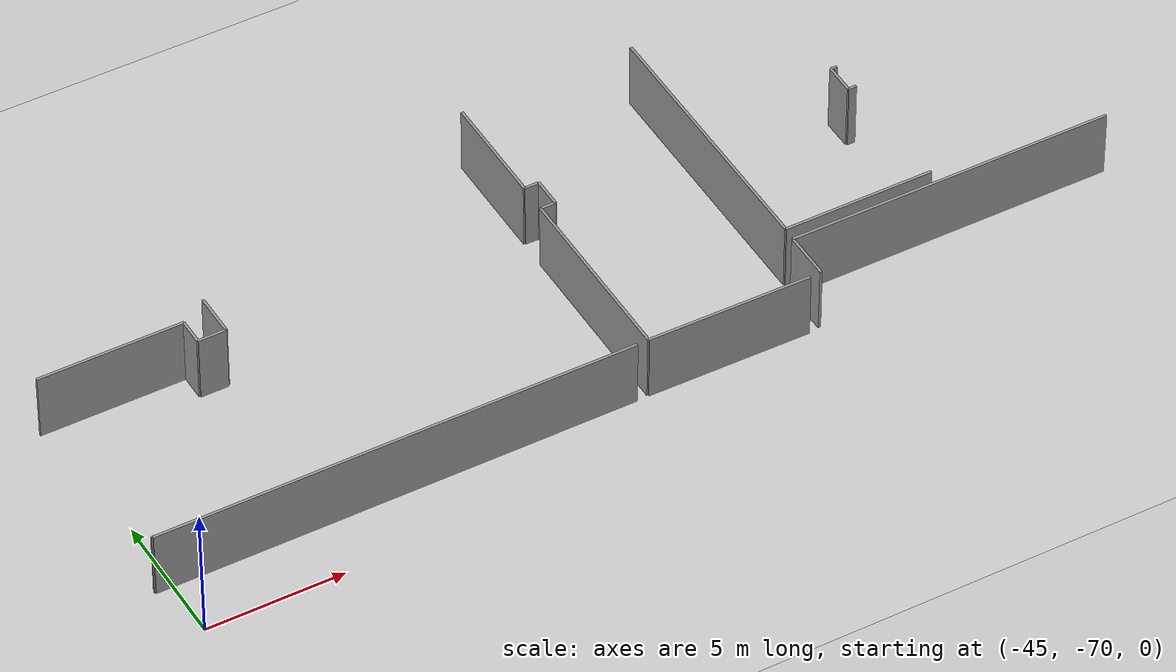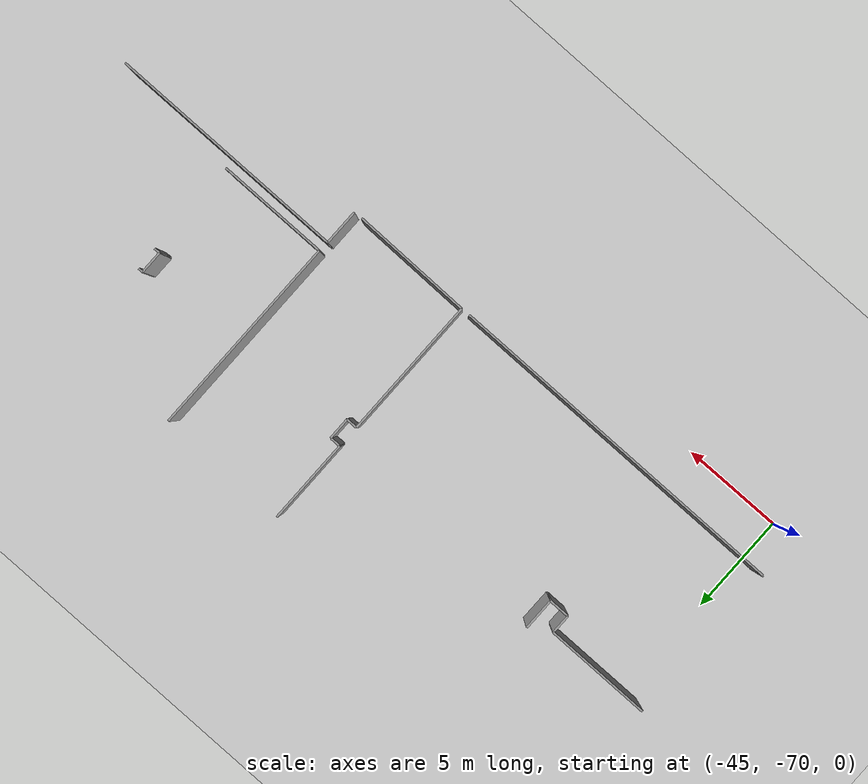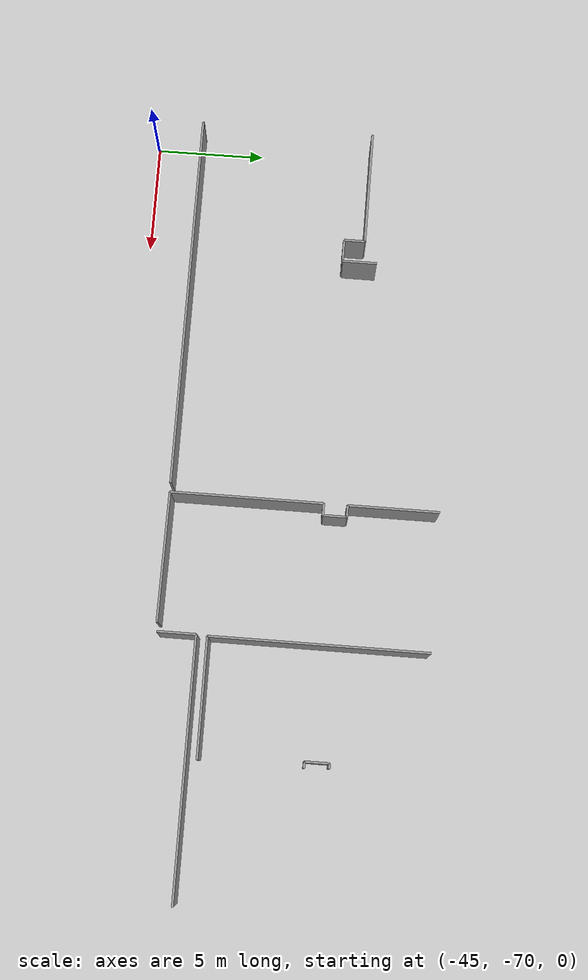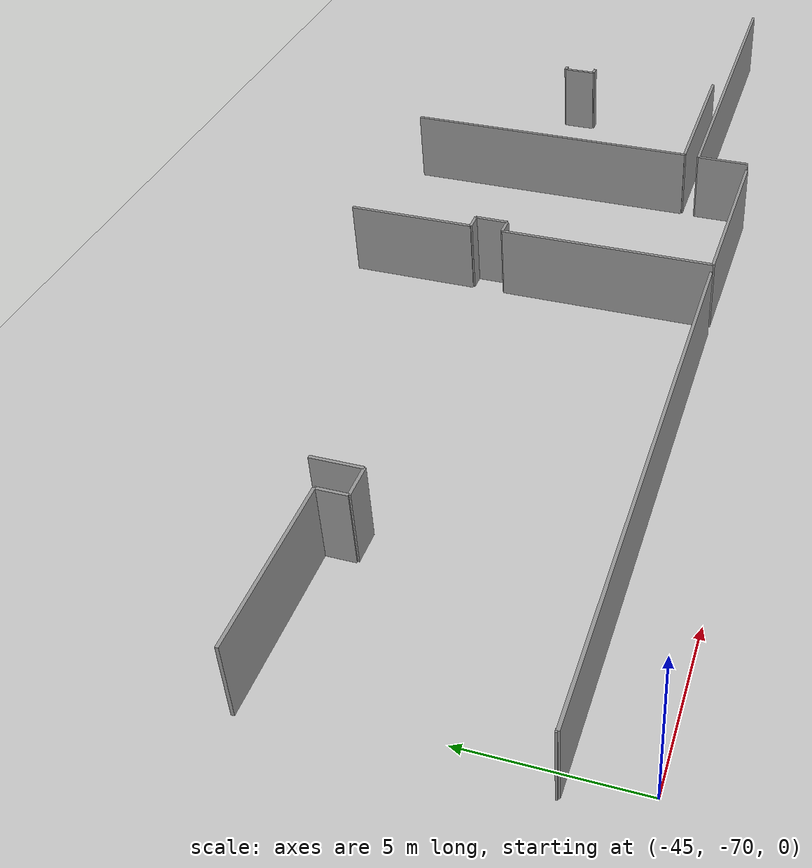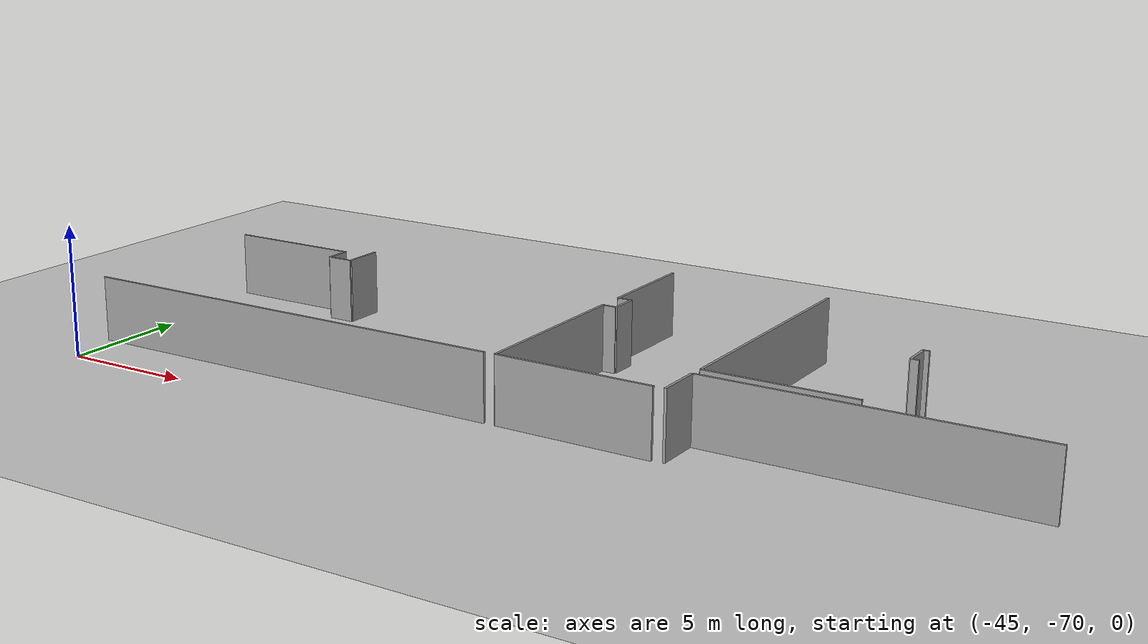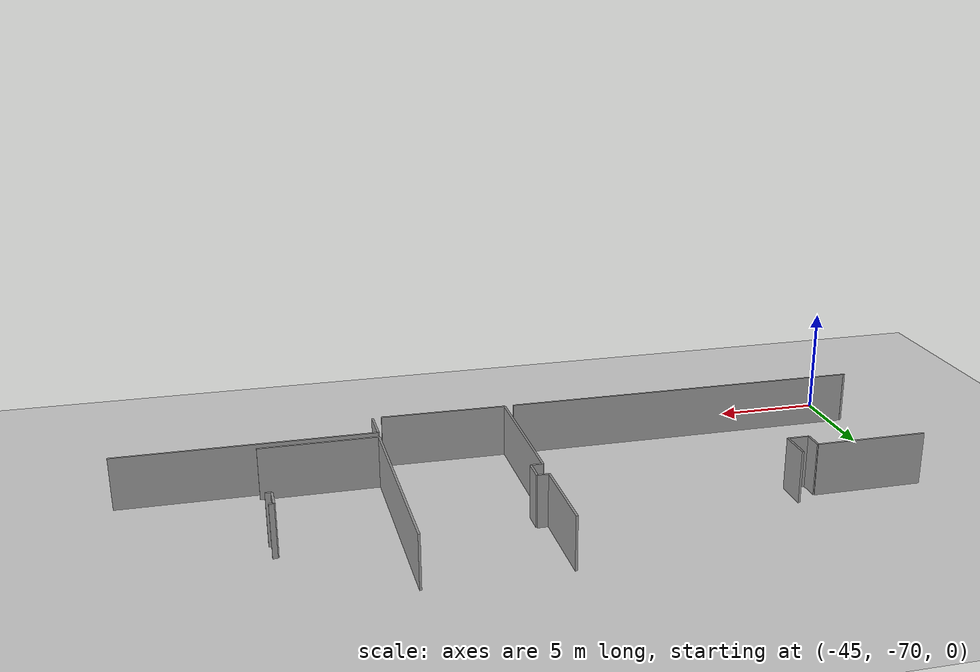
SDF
<sdf version="1.6">
 <world name="default">
  <model name="ground_plane">
   <static>1</static>
   <link name="link">
    <collision name="collision">
     <geometry><plane><normal>0 0 1</normal><size>100 100</size></plane></geometry>
     <surface><friction><ode><mu>100</mu><mu2>50</mu2></ode></friction></surface>
    </collision>
    <visual name="visual">
     <cast_shadows>0</cast_shadows>
     <geometry><plane><normal>0 0 1</normal><size>100 100</size></plane></geometry>
     <material>
      <script><uri>file://media/materials/scripts/gazebo.material</uri><name>Gazebo/Grey</name></script>
     </material>
    </visual>
   </link>
  </model>
  <model name="50036893">
   <static>1</static>
   <link name="Wall_50">
    <collision name="Wall_50_Collision">
     <geometry><box><size>5.27019915418 0.1 2.5</size></box></geometry>
     <pose>2.63509957709 0 1.25 0 0 0</pose>
    </collision>
    <visual name="Wall_50_Visual">
     <pose>2.63509957709 0 1.25 0 0 0</pose>
     <geometry><box><size>5.27019915418 0.1 2.5</size></box></geometry>
     <material>
      <script><uri>file://media/materials/scripts/gazebo.material</uri><name>Gazebo/Grey</name></script>
      <ambient>1 1 1 1</ambient>
     </material>
    </visual>
    <pose>28.6495431691 -127.674505602 0 0 0 0.0</pose>
   </link>
   <link name="Wall_51">
    <collision name="Wall_51_Collision">
     <geometry><box><size>0.964766004933 0.1 2.5</size></box></geometry>
     <pose>0.482383002466 0 1.25 0 0 0</pose>
    </collision>
    <visual name="Wall_51_Visual">
     <pose>0.482383002466 0 1.25 0 0 0</pose>
     <geometry><box><size>0.964766004933 0.1 2.5</size></box></geometry>
     <material>
      <script><uri>file://media/materials/scripts/gazebo.material</uri><name>Gazebo/Grey</name></script>
      <ambient>1 1 1 1</ambient>
     </material>
    </visual>
    <pose>33.9197423233 -127.674505602 0 0 0 -1.57079632679</pose>
   </link>
   <link name="Wall_52">
    <collision name="Wall_52_Collision">
     <geometry><box><size>1.01954767083 0.1 2.5</size></box></geometry>
     <pose>0.509773835414 0 1.25 0 0 0</pose>
    </collision>
    <visual name="Wall_52_Visual">
     <pose>0.509773835414 0 1.25 0 0 0</pose>
     <geometry><box><size>1.01954767083 0.1 2.5</size></box></geometry>
     <material>
      <script><uri>file://media/materials/scripts/gazebo.material</uri><name>Gazebo/Grey</name></script>
      <ambient>1 1 1 1</ambient>
     </material>
    </visual>
    <pose>33.9197423233 -128.639271607 0 0 0 0.0</pose>
   </link>
   <link name="Wall_53">
    <collision name="Wall_53_Collision">
     <geometry><box><size>1.58993640508 0.1 2.5</size></box></geometry>
     <pose>0.79496820254 0 1.25 0 0 0</pose>
    </collision>
    <visual name="Wall_53_Visual">
     <pose>0.79496820254 0 1.25 0 0 0</pose>
     <geometry><box><size>1.58993640508 0.1 2.5</size></box></geometry>
     <material>
      <script><uri>file://media/materials/scripts/gazebo.material</uri><name>Gazebo/Grey</name></script>
      <ambient>1 1 1 1</ambient>
     </material>
    </visual>
    <pose>34.9392899941 -128.639271607 0 0 0 1.57079632679</pose>
   </link>
   <link name="Wall_58">
    <collision name="Wall_58_Collision">
     <geometry><box><size>17.3779617923 0.1 2.5</size></box></geometry>
     <pose>8.68898089616 0 1.25 0 0 0</pose>
    </collision>
    <visual name="Wall_58_Visual">
     <pose>8.68898089616 0 1.25 0 0 0</pose>
     <geometry><box><size>17.3779617923 0.1 2.5</size></box></geometry>
     <material>
      <script><uri>file://media/materials/scripts/gazebo.material</uri><name>Gazebo/Grey</name></script>
      <ambient>1 1 1 1</ambient>
     </material>
    </visual>
    <pose>46.0300411497 -135.709657171 0 0 0 3.14159265359</pose>
   </link>
   <link name="Wall_59">
    <collision name="Wall_59_Collision">
     <geometry><box><size>0.057373937053 0.1 2.5</size></box></geometry>
     <pose>0.0286869685265 0 1.25 0 0 0</pose>
    </collision>
    <visual name="Wall_59_Visual">
     <pose>0.0286869685265 0 1.25 0 0 0</pose>
     <geometry><box><size>0.057373937053 0.1 2.5</size></box></geometry>
     <material>
      <script><uri>file://media/materials/scripts/gazebo.material</uri><name>Gazebo/Grey</name></script>
      <ambient>1 1 1 1</ambient>
     </material>
    </visual>
    <pose>28.6520793573 -135.709657171 0 0 0 1.61501527119</pose>
   </link>
   <link name="Wall_60">
    <collision name="Wall_60_Collision">
     <geometry><box><size>7.0239733193 0.1 2.5</size></box></geometry>
     <pose>3.51198665965 0 1.25 0 0 0</pose>
    </collision>
    <visual name="Wall_60_Visual">
     <pose>3.51198665965 0 1.25 0 0 0</pose>
     <geometry><box><size>7.0239733193 0.1 2.5</size></box></geometry>
     <material>
      <script><uri>file://media/materials/scripts/gazebo.material</uri><name>Gazebo/Grey</name></script>
      <ambient>1 1 1 1</ambient>
     </material>
    </visual>
    <pose>46.453584585 -135.696215373 0 0 0 1.57079632679</pose>
   </link>
   <link name="Wall_61">
    <collision name="Wall_61_Collision">
     <geometry><box><size>0.547816658952 0.1 2.5</size></box></geometry>
     <pose>0.273908329476 0 1.25 0 0 0</pose>
    </collision>
    <visual name="Wall_61_Visual">
     <pose>0.273908329476 0 1.25 0 0 0</pose>
     <geometry><box><size>0.547816658952 0.1 2.5</size></box></geometry>
     <material>
      <script><uri>file://media/materials/scripts/gazebo.material</uri><name>Gazebo/Grey</name></script>
      <ambient>1 1 1 1</ambient>
     </material>
    </visual>
    <pose>46.453584585 -128.672242054 0 0 0 0.0</pose>
   </link>
   <link name="Wall_62">
    <collision name="Wall_62_Collision">
     <geometry><box><size>1.0966477932 0.1 2.5</size></box></geometry>
     <pose>0.5483238966 0 1.25 0 0 0</pose>
    </collision>
    <visual name="Wall_62_Visual">
     <pose>0.5483238966 0 1.25 0 0 0</pose>
     <geometry><box><size>1.0966477932 0.1 2.5</size></box></geometry>
     <material>
      <script><uri>file://media/materials/scripts/gazebo.material</uri><name>Gazebo/Grey</name></script>
      <ambient>1 1 1 1</ambient>
     </material>
    </visual>
    <pose>47.001401244 -128.672242054 0 0 0 1.57079632679</pose>
   </link>
   <link name="Wall_63">
    <collision name="Wall_63_Collision">
     <geometry><box><size>0.537671906009 0.1 2.5</size></box></geometry>
     <pose>0.268835953004 0 1.25 0 0 0</pose>
    </collision>
    <visual name="Wall_63_Visual">
     <pose>0.268835953004 0 1.25 0 0 0</pose>
     <geometry><box><size>0.537671906009 0.1 2.5</size></box></geometry>
     <material>
      <script><uri>file://media/materials/scripts/gazebo.material</uri><name>Gazebo/Grey</name></script>
      <ambient>1 1 1 1</ambient>
     </material>
    </visual>
    <pose>47.001401244 -127.575594261 0 0 0 3.14159265359</pose>
   </link>
   <link name="Wall_64">
    <collision name="Wall_64_Collision">
     <geometry><box><size>4.19409448569 0.1 2.5</size></box></geometry>
     <pose>2.09704724285 0 1.25 0 0 0</pose>
    </collision>
    <visual name="Wall_64_Visual">
     <pose>2.09704724285 0 1.25 0 0 0</pose>
     <geometry><box><size>4.19409448569 0.1 2.5</size></box></geometry>
     <material>
      <script><uri>file://media/materials/scripts/gazebo.material</uri><name>Gazebo/Grey</name></script>
      <ambient>1 1 1 1</ambient>
     </material>
    </visual>
    <pose>46.463729338 -127.575594261 0 0 0 1.57079632679</pose>
   </link>
   <link name="Wall_68">
    <collision name="Wall_68_Collision">
     <geometry><box><size>5.97049223935 0.1 2.5</size></box></geometry>
     <pose>2.98524611968 0 1.25 0 0 0</pose>
    </collision>
    <visual name="Wall_68_Visual">
     <pose>2.98524611968 0 1.25 0 0 0</pose>
     <geometry><box><size>5.97049223935 0.1 2.5</size></box></geometry>
     <material>
      <script><uri>file://media/materials/scripts/gazebo.material</uri><name>Gazebo/Grey</name></script>
      <ambient>1 1 1 1</ambient>
     </material>
    </visual>
    <pose>52.4237716923 -135.756576653 0 0 0 3.13148254777</pose>
   </link>
   <link name="Wall_69">
    <collision name="Wall_69_Collision">
     <geometry><box><size>10.07221796 0.1 2.5</size></box></geometry>
     <pose>5.03610898001 0 1.25 0 0 0</pose>
    </collision>
    <visual name="Wall_69_Visual">
     <pose>5.03610898001 0 1.25 0 0 0</pose>
     <geometry><box><size>10.07221796 0.1 2.5</size></box></geometry>
     <material>
      <script><uri>file://media/materials/scripts/gazebo.material</uri><name>Gazebo/Grey</name></script>
      <ambient>1 1 1 1</ambient>
     </material>
    </visual>
    <pose>52.8777493866 -133.438246987 0 0 0 1.57079632679</pose>
   </link>
   <link name="Wall_73">
    <collision name="Wall_73_Collision">
     <geometry><box><size>0.22825694123 0.1 2.5</size></box></geometry>
     <pose>0.114128470615 0 1.25 0 0 0</pose>
    </collision>
    <visual name="Wall_73_Visual">
     <pose>0.114128470615 0 1.25 0 0 0</pose>
     <geometry><box><size>0.22825694123 0.1 2.5</size></box></geometry>
     <material>
      <script><uri>file://media/materials/scripts/gazebo.material</uri><name>Gazebo/Grey</name></script>
      <ambient>1 1 1 1</ambient>
     </material>
    </visual>
    <pose>58.3305540937 -127.547949809 0 0 0 3.14159265359</pose>
   </link>
   <link name="Wall_74">
    <collision name="Wall_74_Collision">
     <geometry><box><size>1.12505310144 0.1 2.5</size></box></geometry>
     <pose>0.562526550721 0 1.25 0 0 0</pose>
    </collision>
    <visual name="Wall_74_Visual">
     <pose>0.562526550721 0 1.25 0 0 0</pose>
     <geometry><box><size>1.12505310144 0.1 2.5</size></box></geometry>
     <material>
      <script><uri>file://media/materials/scripts/gazebo.material</uri><name>Gazebo/Grey</name></script>
      <ambient>1 1 1 1</ambient>
     </material>
    </visual>
    <pose>58.1022971525 -127.547949809 0 0 0 -1.57079632679</pose>
   </link>
   <link name="Wall_75">
    <collision name="Wall_75_Collision">
     <geometry><box><size>0.294197835363 0.1 2.5</size></box></geometry>
     <pose>0.147098917682 0 1.25 0 0 0</pose>
    </collision>
    <visual name="Wall_75_Visual">
     <pose>0.147098917682 0 1.25 0 0 0</pose>
     <geometry><box><size>0.294197835363 0.1 2.5</size></box></geometry>
     <material>
      <script><uri>file://media/materials/scripts/gazebo.material</uri><name>Gazebo/Grey</name></script>
      <ambient>1 1 1 1</ambient>
     </material>
    </visual>
    <pose>58.1022971525 -128.67300291 0 0 0 0.0</pose>
   </link>
   <link name="Wall_77">
    <collision name="Wall_77_Collision">
     <geometry><box><size>5.51875050234 0.1 2.5</size></box></geometry>
     <pose>2.75937525117 0 1.25 0 0 0</pose>
    </collision>
    <visual name="Wall_77_Visual">
     <pose>2.75937525117 0 1.25 0 0 0</pose>
     <geometry><box><size>5.51875050234 0.1 2.5</size></box></geometry>
     <material>
      <script><uri>file://media/materials/scripts/gazebo.material</uri><name>Gazebo/Grey</name></script>
      <ambient>1 1 1 1</ambient>
     </material>
    </visual>
    <pose>58.3964949879 -133.430892041 0 0 0 -3.14025993379</pose>
   </link>
   <link name="Wall_87">
    <collision name="Wall_87_Collision">
     <geometry><box><size>1.77786795336 0.1 2.5</size></box></geometry>
     <pose>0.88893397668 0 1.25 0 0 0</pose>
    </collision>
    <visual name="Wall_87_Visual">
     <pose>0.88893397668 0 1.25 0 0 0</pose>
     <geometry><box><size>1.77786795336 0.1 2.5</size></box></geometry>
     <material>
      <script><uri>file://media/materials/scripts/gazebo.material</uri><name>Gazebo/Grey</name></script>
      <ambient>1 1 1 1</ambient>
     </material>
    </visual>
    <pose>52.839706563 -135.729439439 0 0 0 1.57079632679</pose>
   </link>
   <link name="Wall_88">
    <collision name="Wall_88_Collision">
     <geometry><box><size>11.9784170381 0.1 2.5</size></box></geometry>
     <pose>5.98920851906 0 1.25 0 0 0</pose>
    </collision>
    <visual name="Wall_88_Visual">
     <pose>5.98920851906 0 1.25 0 0 0</pose>
     <geometry><box><size>11.9784170381 0.1 2.5</size></box></geometry>
     <material>
      <script><uri>file://media/materials/scripts/gazebo.material</uri><name>Gazebo/Grey</name></script>
      <ambient>1 1 1 1</ambient>
     </material>
    </visual>
    <pose>52.839706563 -133.951571486 0 0 0 0.0</pose>
   </link>
   <pose>-74.25 67.8925905261 0 0 0 0</pose>
  </model>
 </world>
</sdf>
